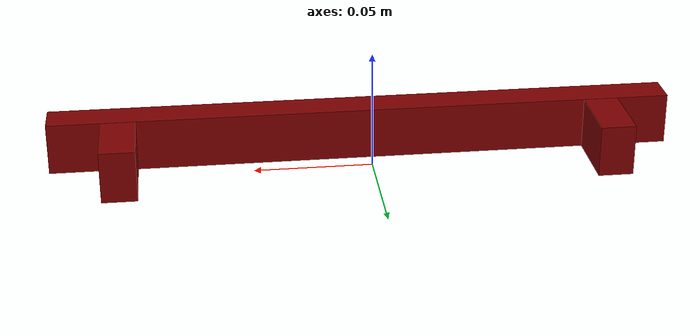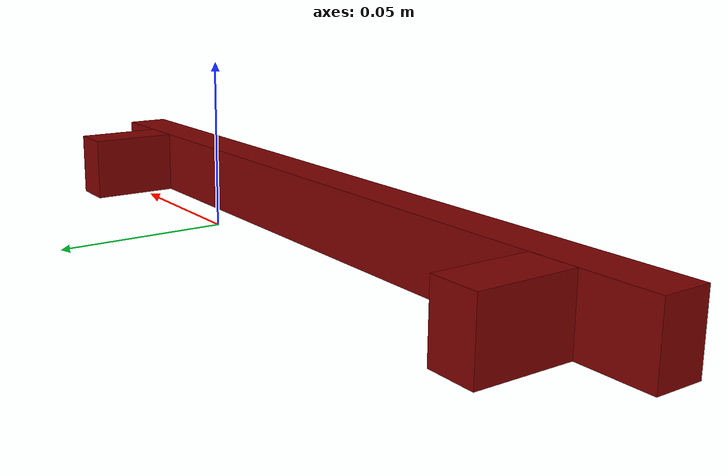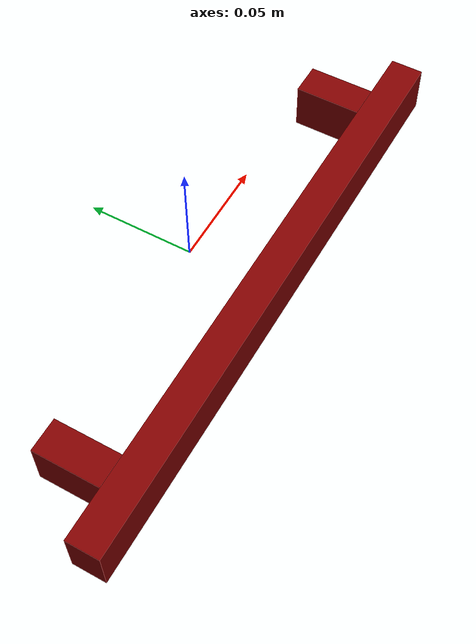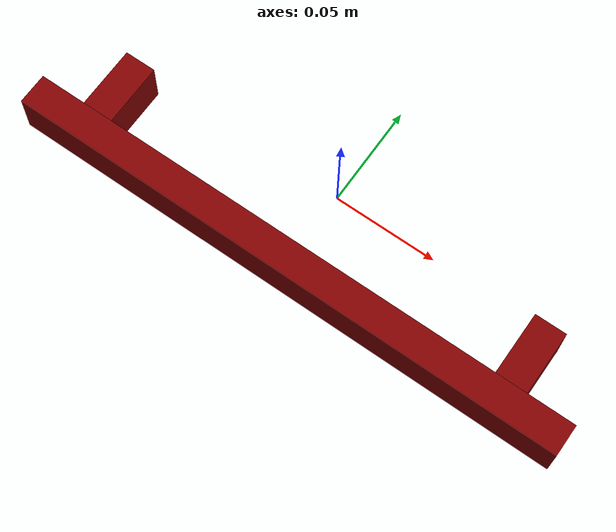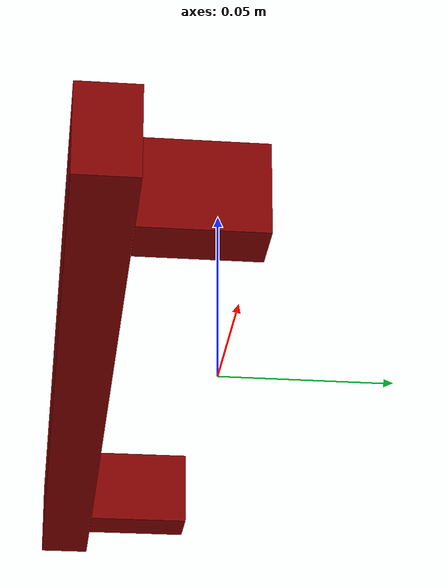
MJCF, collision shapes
<mujoco model="protruding_rectangular_handle">
  <compiler angle="radian"/>
  <asset>
    <mesh file="visuals/CabinetHandle003.obj" name="mesh"/>
    <texture file="visuals/T_CabinetHandle003_BC001.png" name="tex" type="2d"/>
    <material name="mat" rgba="1 1 1 1" texture="tex"/>
  </asset>
  <default>
    <default class="visual">
      <geom conaffinity="0" contype="0" group="1" type="mesh"/>
    </default>
    <default class="collision">
      <geom group="0" rgba="0.5 0 0 0.5"/>
    </default>
    <default class="region">
      <geom group="1" conaffinity="0" contype="0" rgba="0 1 0 0"/>
    </default>
  </default>
  <worldbody>
    <body>
      <body name="object">
        <geom mesh="mesh" type="mesh" density="0" class="visual" material="mat"/>
        <geom class="collision" density="10" type="box" pos="-0.10672417283058167 -0.015464729629456997 0.0" size="0.007629015017300844 0.015396546572446823 0.011331900022923946" quat="1.0 0.0 0.0 0.0" name="handle_connector_top"/>
        <geom class="collision" density="10" type="box" pos="0.10671103000640869 -0.015464729629456997 0.0" size="0.007629015017300844 0.015396546572446823 0.011331900022923946" quat="1.0 0.0 0.0 0.0" name="handle_connector_bottom"/>
        <geom class="collision" density="10" type="box" pos="8.290261030197144e-05 -0.03854287788271904 0.0" size="0.007629017811268568 0.13741327822208405 0.011331900022923946" quat="0.7071067094802856 0.0 -0.0 -0.7071068286895752" name="handle"/>
        <geom class="region" name="reg_bbox" density="0" type="box" pos="0.0 -0.0228705 0.0" size="0.137221 0.0228705 0.011435"/>
      </body>
    </body>
  </worldbody>
  <actuator/>
</mujoco>
